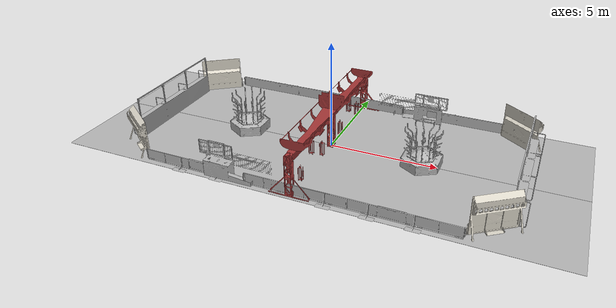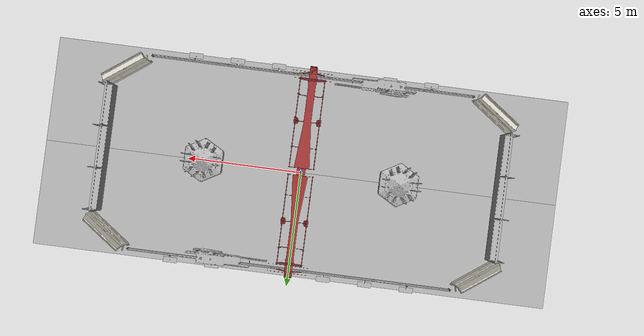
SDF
<?xml version="1.0"?>
<sdf version="1.8">
  <world name="reefscape">

    <!-- Barge (one only) -->
    <include>
      <uri>model://barge</uri>
      <name>barge</name>
      <pose>0 0 0 0 0 -1.57080</pose>
    </include>

    <!-- Reefs -->
    <include>
      <uri>model://reef</uri>
      <name>blue_reef</name>
      <pose>-4.2847 0 0 0 0 0</pose>
    </include>
    <include>
      <uri>model://reef</uri>
      <name>red_reef</name>
      <pose>4.2847 0 0 0 0 0</pose>
    </include>

    <!-- Coral stations (two corners per alliance) -->
    <include>
      <uri>model://coral_station</uri>
      <name>blue_coral_station_1</name>
      <pose>-7.9550 3.3592 0 0 0 -2.51345</pose>
    </include>
    <include>
      <uri>model://coral_station</uri>
      <name>blue_coral_station_3</name>
      <pose>-7.9146 -3.4489 0 0 0 -0.62814</pose>
    </include>
    <include>
      <uri>model://coral_station</uri>
      <name>red_coral_station_1</name>
      <pose>7.9487 -3.3473 0 0 0 0.62814</pose>
    </include>
    <include>
      <uri>model://coral_station</uri>
      <name>red_coral_station_3</name>
      <pose>7.9146 3.4489 0 0 0 2.51345</pose>
    </include>

    <!-- Processors (one per alliance, on the scoring-table side) -->
    <include>
      <uri>model://processor</uri>
      <name>blue_processor</name>
      <pose>-3.6094 -3.8785 0 0 0 -3.14159</pose>
    </include>
    <include>
      <uri>model://processor</uri>
      <name>red_processor</name>
      <pose>3.6094 3.8785 0 0 0 0</pose>
    </include>

    <!-- Field walls (side borders) -->
    <include>
      <uri>model://field_wall</uri>
      <name>blue_field_wall</name>
      <pose>0 -4.2371 0 0 0 -3.14159</pose>
    </include>
    <include>
      <uri>model://field_wall</uri>
      <name>red_field_wall</name>
      <pose>0 4.2371 0 0 0 0</pose>
    </include>

    <!-- Driver stations -->
    <include>
      <uri>model://driver_stations</uri>
      <name>blue_driver_stations</name>
      <pose>-8.4842 0 0 0 0 0</pose>
    </include>
    <include>
      <uri>model://driver_stations</uri>
      <name>red_driver_stations</name>
      <pose>8.4842 0 0 0 0 -3.14159</pose>
    </include>

    <!-- Carpet (two halves, split across the field width) -->
    <include>
      <uri>model://carpet</uri>
      <name>blue_carpet</name>
      <pose>0 -0.0040 0 0 0 0</pose>
    </include>
    <include>
      <uri>model://carpet</uri>
      <name>red_carpet</name>
      <pose>0 -4.5760 0 0 0 0</pose>
    </include>
  </world>
</sdf>

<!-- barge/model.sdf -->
<sdf version="1.8">
  <model name="reefscape_barge">
    <static>true</static>

    <link name="link">
      <visual name="visual">
        <geometry>
          <mesh>
            <uri>meshes/barge.stl</uri>
            <scale>1 1 1</scale>
          </mesh>
        </geometry>
        <material>
          <ambient>0.31 0.10 0.10 1</ambient>
          <diffuse>0.62 0.20 0.20 1</diffuse>
        </material>
      </visual>

      <collision name="collision">
        <geometry>
          <mesh>
            <uri>meshes/barge.stl</uri>
            <scale>1 1 1</scale>
          </mesh>
        </geometry>
      </collision>
    </link>
  </model>
</sdf>

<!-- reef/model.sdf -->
<sdf version="1.8">
  <model name="reefscape_reef">
    <static>true</static>

    <link name="link">
      <visual name="visual">
        <geometry>
          <mesh>
            <uri>meshes/reef.stl</uri>
            <scale>1 1 1</scale>
          </mesh>
        </geometry>
        <material>
          <ambient>0.5 0.5 0.5 1</ambient>
          <diffuse>0.7 0.7 0.7 1</diffuse>
        </material>
      </visual>

      <collision name="collision">
        <geometry>
          <box>
            <size>2.0 2.0 1.5</size>
          </box>
        </geometry>
      </collision>
    </link>
  </model>
</sdf>

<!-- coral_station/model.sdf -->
<sdf version="1.8">
  <model name="reefscape_coral_station">
    <static>true</static>

    <link name="link">
      <visual name="visual">
        <geometry>
          <mesh>
            <uri>meshes/coral_station.stl</uri>
            <scale>1 1 1</scale>
          </mesh>
        </geometry>
        <material>
          <ambient>0.42 0.41 0.39 1</ambient>
          <diffuse>0.85 0.83 0.78 1</diffuse>
        </material>
      </visual>

      <collision name="collision">
        <geometry>
          <mesh>
            <uri>meshes/coral_station.stl</uri>
            <scale>1 1 1</scale>
          </mesh>
        </geometry>
      </collision>
    </link>
  </model>
</sdf>

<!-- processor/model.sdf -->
<sdf version="1.8">
  <model name="reefscape_processor">
    <static>true</static>

    <link name="link">
      <visual name="visual">
        <geometry>
          <mesh>
            <uri>meshes/processor.stl</uri>
            <scale>1 1 1</scale>
          </mesh>
        </geometry>
        <material>
          <ambient>0.5 0.5 0.5 1</ambient>
          <diffuse>0.7 0.7 0.7 1</diffuse>
        </material>
      </visual>

      <collision name="collision">
        <geometry>
          <box>
            <size>2.0 2.0 1.5</size>
          </box>
        </geometry>
      </collision>
    </link>
  </model>
</sdf>

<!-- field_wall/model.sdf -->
<sdf version="1.8">
  <model name="reefscape_field_wall">
    <static>true</static>

    <link name="link">
      <visual name="visual">
        <geometry>
          <mesh>
            <uri>meshes/field_wall.stl</uri>
            <scale>1 1 1</scale>
          </mesh>
        </geometry>
        <material>
          <ambient>0.5 0.5 0.5 1</ambient>
          <diffuse>0.7 0.7 0.7 1</diffuse>
        </material>
      </visual>

      <collision name="collision">
        <geometry>
          <box>
            <size>2.0 2.0 1.5</size>
          </box>
        </geometry>
      </collision>
    </link>
  </model>
</sdf>

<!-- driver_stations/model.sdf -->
<sdf version="1.8">
  <model name="reefscape_driver_stations">
    <static>true</static>

    <link name="link">
      <visual name="visual">
        <geometry>
          <mesh>
            <uri>meshes/driver_stations.stl</uri>
            <scale>1 1 1</scale>
          </mesh>
        </geometry>
        <material>
          <ambient>0.5 0.5 0.5 1</ambient>
          <diffuse>0.7 0.7 0.7 1</diffuse>
        </material>
      </visual>

      <collision name="collision">
        <geometry>
          <box>
            <size>2.0 2.0 1.5</size>
          </box>
        </geometry>
      </collision>
    </link>
  </model>
</sdf>

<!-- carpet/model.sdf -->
<sdf version="1.8">
  <model name="reefscape_carpet">
    <static>true</static>

    <link name="link">
      <visual name="visual">
        <geometry>
          <mesh>
            <uri>meshes/carpet.stl</uri>
            <scale>1 1 1</scale>
          </mesh>
        </geometry>
        <material>
          <ambient>0.5 0.5 0.5 1</ambient>
          <diffuse>0.7 0.7 0.7 1</diffuse>
        </material>
      </visual>

      <collision name="collision">
        <geometry>
          <box>
            <size>2.0 2.0 1.5</size>
          </box>
        </geometry>
      </collision>
    </link>
  </model>
</sdf>
